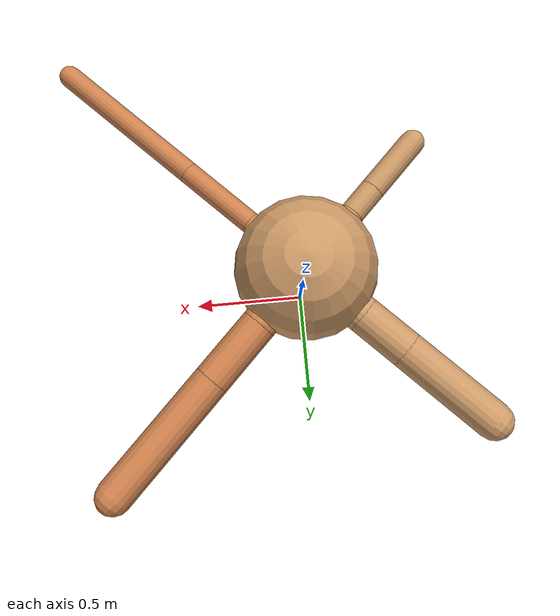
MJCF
<?xml version="1.0" ?>
<mujoco model="ant">

	<compiler angle="degree" coordinate="local" inertiafromgeom="true"/>

	<option integrator="RK4" timestep="0.01"/>

	<custom>

		<numeric data="0.0 0.0 0.55 1.0 0.0 0.0 0.0 0.0 1.0 0.0 -1.0 0.0 -1.0 0.0 1.0" name="init_qpos"/>

	</custom>

	<default>

		<joint armature="1" damping="1" limited="true"/>

		<geom conaffinity="0" condim="3" density="5.0" friction="1.5 0.1 0.1" margin="0.01" rgba="0.8 0.6 0.4 1"/>

	</default>

	<worldbody>

		<body name="torso" pos="0 0 0.75">

			<geom name="torso_geom" pos="0 0 0" size="0.27859444414277496" type="sphere"/>

			<!--joint armature="0" damping="0" limited="false" margin="0.01" name="root" pos="0 0 0" type="free"/-->

			<body name="front_left_leg" pos="0 0 0">

				<geom fromto="0 0 0 0.2 0.2 0" name="aux_1_geom" size="0.07069130760274335" type="capsule" rgba=".8 .5 .3 1"/>

				<body name="aux_1" pos="0.2 0.2 0">

					<joint axis="0 0 1" name="hip_1" pos="0.0 0.0 0.0" range="-40 40" type="hinge"/>

					<geom fromto="0 0 0 0.1920756600985286 0.1920756600985286 0" name="left_leg_geom" size="0.07069130760274335" type="capsule" rgba=".8 .5 .3 1"/>

					<body pos="0.1920756600985286 0.1920756600985286 0" name="front_left_foot">

						<joint axis="-1 1 0" name="ankle_1" pos="0.0 0.0 0.0" range="30 100" type="hinge"/>

						<geom fromto="0 0 0 0.3841513201970572 0.3841513201970572 0" name="left_ankle_geom" size="0.07069130760274335" type="capsule" rgba=".8 .5 .3 1"/>

					</body>

				</body>

			</body>

			<body name="front_right_leg" pos="0 0 0">

				<geom fromto="0 0 0 -0.2 0.2 0" name="aux_2_geom" size="0.07327079564564351" type="capsule"/>

				<body name="aux_2" pos="-0.2 0.2 0">

					<joint axis="0 0 1" name="hip_2" pos="0.0 0.0 0.0" range="-40 40" type="hinge"/>

					<geom fromto="0 0 0 -0.14489205391035256 0.14489205391035256 0" name="right_leg_geom" size="0.07327079564564351" type="capsule"/>

					<body pos="-0.14489205391035256 0.14489205391035256 0" name="front_right_foot">

						<joint axis="1 1 0" name="ankle_2" pos="0.0 0.0 0.0" range="-100 -30" type="hinge"/>

						<geom fromto="0 0 0 -0.28978410782070513 0.28978410782070513 0" name="right_ankle_geom" size="0.07327079564564351" type="capsule"/>

					</body>

				</body>

			</body>

			<body name="left_back_leg" pos="0 0 0">

				<geom fromto="0 0 0 -0.2 -0.2 0" name="aux_3_geom" size="0.04971903239741941" type="capsule"/>

				<body name="aux_3" pos="-0.2 -0.2 0">

					<joint axis="0 0 1" name="hip_3" pos="0.0 0.0 0.0" range="-40 40" type="hinge"/>

					<geom fromto="0 0 0 -0.09004244012872889 -0.09004244012872889 0" name="back_leg_geom" size="0.04971903239741941" type="capsule"/>

					<body pos="-0.09004244012872889 -0.09004244012872889 0" name="left_back_foot">

						<joint axis="-1 1 0" name="ankle_3" pos="0.0 0.0 0.0" range="-100 -30" type="hinge"/>

						<geom fromto="0 0 0 -0.18008488025745778 -0.18008488025745778 0" name="third_ankle_geom" size="0.04971903239741941" type="capsule"/>

					</body>

				</body>

			</body>

			<body name="right_back_leg" pos="0 0 0">

				<geom fromto="0 0 0 0.2 -0.2 0" name="aux_4_geom" size="0.04347286794680775" type="capsule" rgba=".8 .5 .3 1"/>

				<body name="aux_4" pos="0.2 -0.2 0">

					<joint axis="0 0 1" name="hip_4" pos="0.0 0.0 0.0" range="-40 40" type="hinge"/>

					<geom fromto="0 0 0 0.2248960975213095 -0.2248960975213095 0" name="rightback_leg_geom" size="0.04347286794680775" type="capsule" rgba=".8 .5 .3 1"/>

					<body pos="0.2248960975213095 -0.2248960975213095 0" name="right_back_foot">

						<joint axis="1 1 0" name="ankle_4" pos="0.0 0.0 0.0" range="30 100" type="hinge"/>

						<geom fromto="0 0 0 0.449792195042619 -0.449792195042619 0" name="fourth_ankle_geom" size="0.04347286794680775" type="capsule" rgba=".8 .5 .3 1"/>

					</body>

				</body>

			</body>

		</body>

	</worldbody>

	<actuator>

		<motor ctrllimited="true" ctrlrange="-1.0 1.0" joint="hip_4" gear="150"/>

		<motor ctrllimited="true" ctrlrange="-1.0 1.0" joint="ankle_4" gear="150"/>

		<motor ctrllimited="true" ctrlrange="-1.0 1.0" joint="hip_1" gear="150"/>

		<motor ctrllimited="true" ctrlrange="-1.0 1.0" joint="ankle_1" gear="150"/>

		<motor ctrllimited="true" ctrlrange="-1.0 1.0" joint="hip_2" gear="150"/>

		<motor ctrllimited="true" ctrlrange="-1.0 1.0" joint="ankle_2" gear="150"/>

		<motor ctrllimited="true" ctrlrange="-1.0 1.0" joint="hip_3" gear="150"/>

		<motor ctrllimited="true" ctrlrange="-1.0 1.0" joint="ankle_3" gear="150"/>

	</actuator>

</mujoco>
